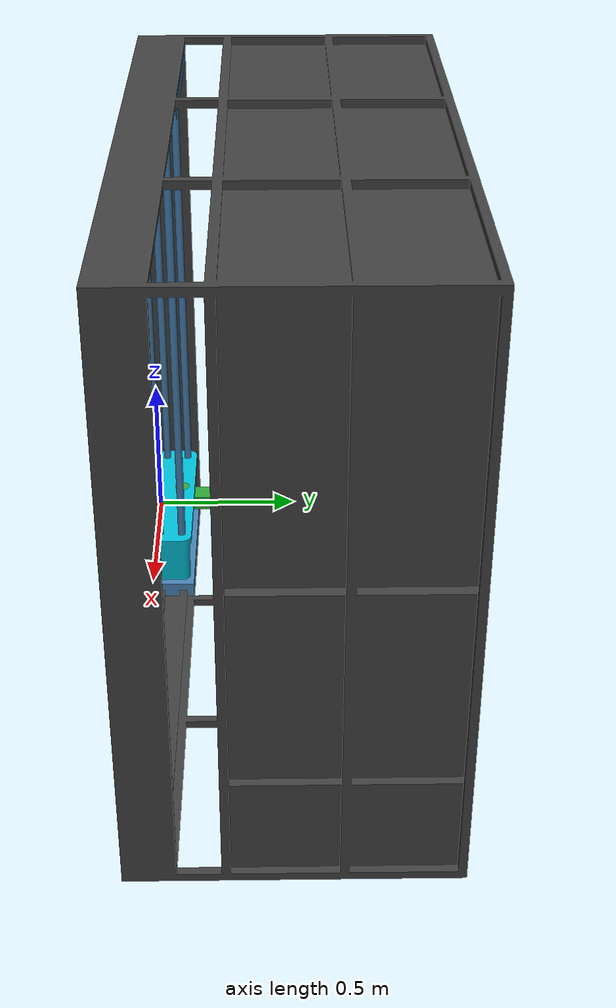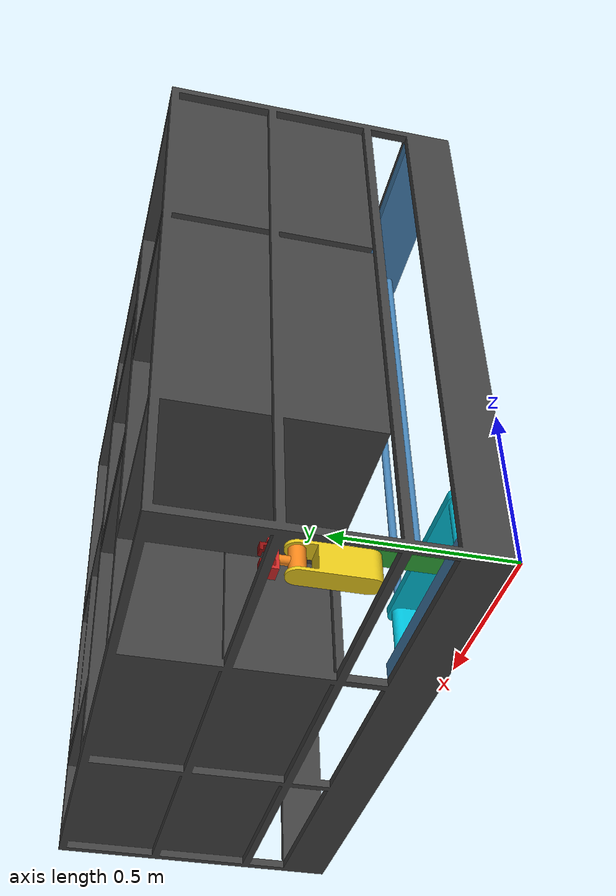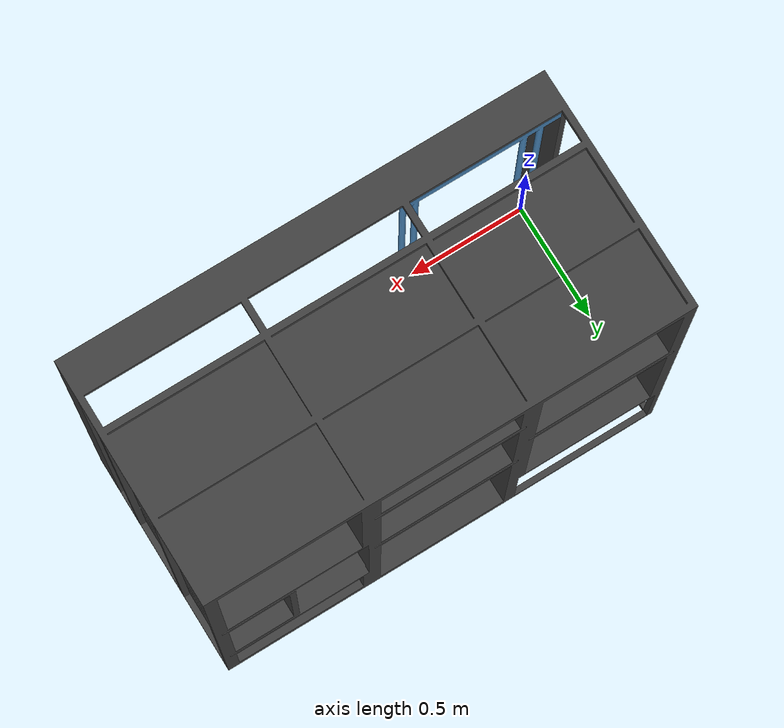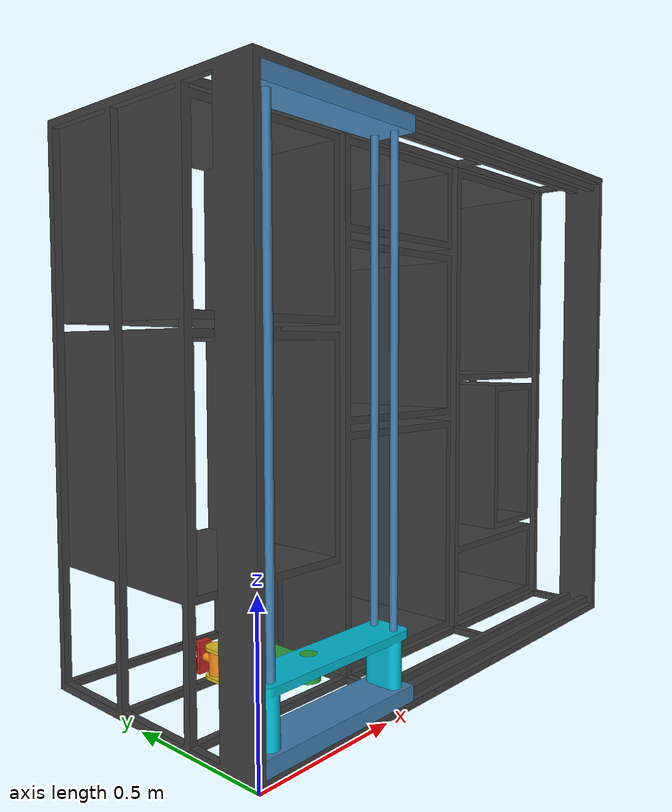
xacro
<?xml version="1.0" ?>
<robot name="cooka" xmlns:xacro="http://www.ros.org/wiki/xacro">

<xacro:arg name="use_gazebo" default="true"/>

<xacro:include filename="$(find cooka_description)/urdf/materials.xacro" />
<xacro:if value="$(arg use_gazebo)">
  <xacro:include filename="$(find cooka_description)/urdf/cooka.ros2control" />
  <xacro:include filename="$(find cooka_description)/urdf/cooka.gazebo" />
</xacro:if>

<!-- Fixes base_link to the Gazebo world frame so joint reaction forces
     do not move the whole robot body. -->
<link name="world"/>
<joint name="world_joint" type="fixed">
  <parent link="world"/>
  <child link="base_link"/>
  <origin xyz="0 0 0" rpy="0 0 0"/>
</joint>

<link name="base_link">
  <inertial>
    <origin xyz="0.9975436681222708 0.5721661208151383 0.9542849344978166" rpy="0 0 0"/>
    <mass value="500"/>
    <inertia ixx="193.79" iyy="334.28" izz="200.26" ixy="-1.256" iyz="-1.434" ixz="23.096"/>
  </inertial>
  <visual>
    <origin xyz="0 0 0" rpy="0 0 0"/>
    <geometry>
      <mesh filename="file://$(find cooka_description)/meshes/base_link.stl" scale="0.001 0.001 0.001"/>
    </geometry>
    <material name="dark_grey"/>
  </visual>
  <collision>
    <origin xyz="0 0 0" rpy="0 0 0"/>
    <geometry>
      <mesh filename="file://$(find cooka_description)/meshes/base_link.stl" scale="0.001 0.001 0.001"/>
    </geometry>
  </collision>
</link>

<!-- horizontal carriage — child of h_slider joint (moves along X) -->
<link name="h_slider_1">
  <inertial>
    <origin xyz="0.29999999999999993 0.07499999999999998 0.8749999999999999" rpy="0 0 0"/>
    <mass value="30"/>
    <inertia ixx="17.163" iyy="18.304" izz="1.249" ixy="0.0" iyz="0.0" ixz="0.0"/>
  </inertial>
  <visual>
    <origin xyz="-0.025 -0.0 -0.025" rpy="0 0 0"/>
    <geometry>
      <mesh filename="file://$(find cooka_description)/meshes/h_slider_1.stl" scale="0.001 0.001 0.001"/>
    </geometry>
    <material name="steel_blue"/>
  </visual>
  <collision>
    <origin xyz="-0.025 -0.0 -0.025" rpy="0 0 0"/>
    <geometry>
      <mesh filename="file://$(find cooka_description)/meshes/h_slider_1.stl" scale="0.001 0.001 0.001"/>
    </geometry>
  </collision>
</link>

<!-- vertical carriage — child of v_slider joint (moves along -Z) -->
<link name="v_slider_1">
  <inertial>
    <origin xyz="0.2504465277158375 0.0372767361420814 0.12578799485755865" rpy="0 0 0"/>
    <mass value="10"/>
    <inertia ixx="0.040647" iyy="0.452614" izz="0.439699" ixy="-0.0001125" iyz="0.0000888" ixz="-0.0001780"/>
  </inertial>
  <visual>
    <origin xyz="-0.075 -0.0375 -0.075" rpy="0 0 0"/>
    <geometry>
      <mesh filename="file://$(find cooka_description)/meshes/v_slider_1.stl" scale="0.001 0.001 0.001"/>
    </geometry>
    <material name="cyan"/>
  </visual>
  <collision>
    <origin xyz="-0.075 -0.0375 -0.075" rpy="0 0 0"/>
    <geometry>
      <mesh filename="file://$(find cooka_description)/meshes/v_slider_1.stl" scale="0.001 0.001 0.001"/>
    </geometry>
  </collision>
</link>

<link name="scara_link1_1">
  <inertial>
    <origin xyz="-3.175237850427948e-14 0.09106635955881581 -0.04888329494484578" rpy="0 0 0"/>
    <mass value="1"/>
    <inertia ixx="0.005561" iyy="0.000649" izz="0.005698" ixy="0.0" iyz="0.000159" ixz="0.0"/>
  </inertial>
  <visual>
    <origin xyz="-0.275 -0.1 -0.25" rpy="0 0 0"/>
    <geometry>
      <mesh filename="file://$(find cooka_description)/meshes/scara_link1_1.stl" scale="0.001 0.001 0.001"/>
    </geometry>
    <material name="green"/>
  </visual>
  <collision>
    <origin xyz="-0.275 -0.1 -0.25" rpy="0 0 0"/>
    <geometry>
      <mesh filename="file://$(find cooka_description)/meshes/scara_link1_1.stl" scale="0.001 0.001 0.001"/>
    </geometry>
  </collision>
</link>

<link name="scara_link2_1">
  <inertial>
    <origin xyz="5.390132784555135e-14 0.0708029802767362 -0.09729101268320181" rpy="0 0 0"/>
    <mass value="2"/>
    <inertia ixx="0.010083" iyy="0.002973" izz="0.008609" ixy="0.0" iyz="0.000384" ixz="0.0"/>
  </inertial>
  <visual>
    <origin xyz="-0.275 -0.3 -0.225" rpy="0 0 0"/>
    <geometry>
      <mesh filename="file://$(find cooka_description)/meshes/scara_link2_1.stl" scale="0.001 0.001 0.001"/>
    </geometry>
    <material name="yellow"/>
  </visual>
  <collision>
    <origin xyz="-0.275 -0.3 -0.225" rpy="0 0 0"/>
    <geometry>
      <mesh filename="file://$(find cooka_description)/meshes/scara_link2_1.stl" scale="0.001 0.001 0.001"/>
    </geometry>
  </collision>
</link>

<link name="z_rotation_1">
  <inertial>
    <origin xyz="-1.1102230246251565e-16 0.005859005502201642 0.04000000000000002" rpy="0 0 0"/>
    <mass value="0.5"/>
    <inertia ixx="0.000422" iyy="0.000312" izz="0.000269" ixy="0.0" iyz="0.0" ixz="0.0"/>
  </inertial>
  <visual>
    <origin xyz="-0.275 -0.5 -0.085" rpy="0 0 0"/>
    <geometry>
      <mesh filename="file://$(find cooka_description)/meshes/z_rotation_1.stl" scale="0.001 0.001 0.001"/>
    </geometry>
    <material name="orange"/>
  </visual>
  <collision>
    <origin xyz="-0.275 -0.5 -0.085" rpy="0 0 0"/>
    <geometry>
      <mesh filename="file://$(find cooka_description)/meshes/z_rotation_1.stl" scale="0.001 0.001 0.001"/>
    </geometry>
  </collision>
</link>

<link name="y_rotation_1">
  <inertial>
    <origin xyz="-2.964295475749168e-14 0.005713885070151137 -4.163336342344337e-17" rpy="0 0 0"/>
    <mass value="0.5"/>
    <inertia ixx="0.000610" iyy="0.000686" izz="0.000142" ixy="0.0" iyz="0.0" ixz="0.0"/>
  </inertial>
  <visual>
    <origin xyz="-0.275 -0.56 -0.125" rpy="0 0 0"/>
    <geometry>
      <mesh filename="file://$(find cooka_description)/meshes/y_rotation_1.stl" scale="0.001 0.001 0.001"/>
    </geometry>
    <material name="red"/>
  </visual>
  <collision>
    <origin xyz="-0.275 -0.56 -0.125" rpy="0 0 0"/>
    <geometry>
      <mesh filename="file://$(find cooka_description)/meshes/y_rotation_1.stl" scale="0.001 0.001 0.001"/>
    </geometry>
  </collision>
</link>

<link name="gripper_bottom_1">
  <inertial>
    <origin xyz="-0.01500000000002949 0.0081609355582134 0.01013162799287437" rpy="0 0 0"/>
    <mass value="0.1"/>
    <inertia ixx="1.878e-05" iyy="1.967e-05" izz="3.041e-05" ixy="0.0" iyz="-8.94e-07" ixz="0.0"/>
  </inertial>
  <visual>
    <origin xyz="-0.29 -0.575 -0.085" rpy="0 0 0"/>
    <geometry>
      <mesh filename="file://$(find cooka_description)/meshes/gripper_bottom_1.stl" scale="0.001 0.001 0.001"/>
    </geometry>
    <material name="dark_red"/>
  </visual>
  <collision>
    <origin xyz="-0.29 -0.575 -0.085" rpy="0 0 0"/>
    <geometry>
      <mesh filename="file://$(find cooka_description)/meshes/gripper_bottom_1.stl" scale="0.001 0.001 0.001"/>
    </geometry>
  </collision>
</link>

<link name="gripper_top_1">
  <inertial>
    <origin xyz="-0.01500000000002949 0.0081609355582134 -0.010131627992874398" rpy="0 0 0"/>
    <mass value="0.1"/>
    <inertia ixx="1.878e-05" iyy="1.967e-05" izz="3.041e-05" ixy="0.0" iyz="8.94e-07" ixz="0.0"/>
  </inertial>
  <visual>
    <origin xyz="-0.29 -0.575 -0.165" rpy="0 0 0"/>
    <geometry>
      <mesh filename="file://$(find cooka_description)/meshes/gripper_top_1.stl" scale="0.001 0.001 0.001"/>
    </geometry>
    <material name="dark_red"/>
  </visual>
  <collision>
    <origin xyz="-0.29 -0.575 -0.165" rpy="0 0 0"/>
    <geometry>
      <mesh filename="file://$(find cooka_description)/meshes/gripper_top_1.stl" scale="0.001 0.001 0.001"/>
    </geometry>
  </collision>
</link>

<joint name="h_slider" type="prismatic">
  <origin xyz="0.025 0.0 0.025" rpy="0 0 0"/>
  <parent link="base_link"/>
  <child link="h_slider_1"/>
  <axis xyz="1.0 0.0 0.0"/>
  <limit upper="1.25" lower="0.0" effort="100" velocity="100"/>
  <dynamics damping="50.0" friction="0.0"/>
</joint>

<joint name="v_slider" type="prismatic">
  <origin xyz="0.05 0.0375 0.05" rpy="0 0 0"/>
  <parent link="h_slider_1"/>
  <child link="v_slider_1"/>
  <axis xyz="0.0 0.0 -1.0"/>
  <limit upper="0.000" lower="-1.475" effort="1000" velocity="100"/>
  <dynamics damping="100.0" friction="0.0"/>
</joint>

<joint name="scara_j1" type="revolute">
  <origin xyz="0.2 0.0625 0.175" rpy="0 0 0"/>
  <parent link="v_slider_1"/>
  <child link="scara_link1_1"/>
  <axis xyz="0.0 0.0 -1.0"/>
  <limit upper="4.014257" lower="-1.047198" effort="100" velocity="100"/>
  <dynamics damping="10.0" friction="0.0"/>
</joint>

<joint name="scara_j2" type="revolute">
  <origin xyz="0.0 0.2 -0.025" rpy="0 0 0"/>
  <parent link="scara_link1_1"/>
  <child link="scara_link2_1"/>
  <axis xyz="0.0 0.0 -1.0"/>
  <limit upper="1.570796" lower="-4.712389" effort="100" velocity="100"/>
  <dynamics damping="10.0" friction="0.0"/>
</joint>

<joint name="wrist_z" type="revolute">
  <origin xyz="0.0 0.2 -0.14" rpy="0 0 0"/>
  <parent link="scara_link2_1"/>
  <child link="z_rotation_1"/>
  <axis xyz="0.0 0.0 1.0"/>
  <limit upper="2.094395" lower="-2.094395" effort="100" velocity="100"/>
  <dynamics damping="5.0" friction="0.0"/>
</joint>

<joint name="wrist_y" type="revolute">
  <origin xyz="0.0 0.06 0.04" rpy="0 0 0"/>
  <parent link="z_rotation_1"/>
  <child link="y_rotation_1"/>
  <axis xyz="0.0 1.0 0.0"/>
  <limit upper="3.141593" lower="-3.141593" effort="100" velocity="100"/>
  <dynamics damping="5.0" friction="0.0"/>
</joint>

<joint name="finger_bottom" type="prismatic">
  <origin xyz="0.015 0.015 -0.04" rpy="0 0 0"/>
  <parent link="y_rotation_1"/>
  <child link="gripper_bottom_1"/>
  <axis xyz="0.0 0.0 -1.0"/>
  <limit upper="0.0" lower="-0.015" effort="100" velocity="100"/>
  <dynamics damping="1.0" friction="0.0"/>
</joint>

<joint name="finger_top" type="prismatic">
  <origin xyz="0.015 0.015 0.04" rpy="0 0 0"/>
  <parent link="y_rotation_1"/>
  <child link="gripper_top_1"/>
  <axis xyz="0.0 0.0 1.0"/>
  <limit upper="0.0" lower="-0.015" effort="100" velocity="100"/>
  <dynamics damping="1.0" friction="0.0"/>
  <mimic joint="finger_bottom" multiplier="1.0" offset="0.0"/>
</joint>

</robot>

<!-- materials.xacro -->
<robot name="cooka" xmlns:xacro="http://www.ros.org/wiki/xacro">

  <material name="dark_grey">
    <color rgba="0.25 0.25 0.25 1.0"/>
  </material>

  <material name="steel_blue">
    <color rgba="0.27 0.51 0.71 1.0"/>
  </material>

  <material name="cyan">
    <color rgba="0.0 0.75 0.85 1.0"/>
  </material>

  <material name="green">
    <color rgba="0.18 0.65 0.22 1.0"/>
  </material>

  <material name="yellow">
    <color rgba="0.90 0.78 0.10 1.0"/>
  </material>

  <material name="orange">
    <color rgba="0.95 0.52 0.10 1.0"/>
  </material>

  <material name="red">
    <color rgba="0.80 0.15 0.15 1.0"/>
  </material>

  <material name="dark_red">
    <color rgba="0.55 0.05 0.05 1.0"/>
  </material>

  <material name="silver">
    <color rgba="0.70 0.70 0.70 1.0"/>
  </material>

</robot>
